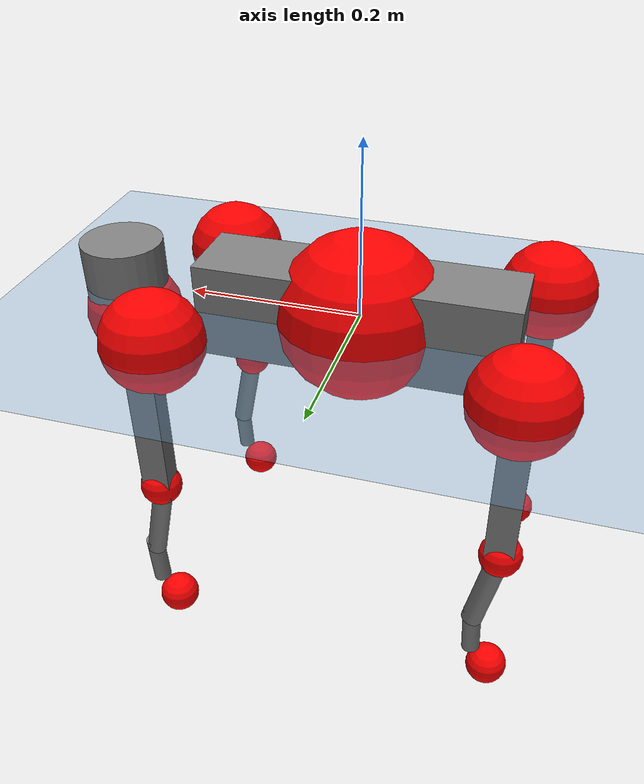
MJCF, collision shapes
<mujoco model="go2">
  <compiler angle="radian" assetdir="assets" balanceinertia="true" inertiafromgeom="false"/>

  <option timestep="0.005" density="1.2" viscosity="2e-05"/>

  <size nkey="1"/>

  <visual>
    <quality shadowsize="8192"/>
    <map shadowclip="0.5"/>
  </visual>

  <default>
    <default class="/">
      <geom contype="0" conaffinity="0" group="1" solref="-1000 -80"/>
      <site size="0.01 0.005 0.005" group="5"/>
      <general forcelimited="true" biastype="affine" gainprm="20" biasprm="0 -20 -0.5"/>
      <default class="go2">
        <joint armature="0.01" damping="0.01" frictionloss="0.2"/>
        <geom condim="1" margin="0.001"/>
        <default class="visual">
          <geom type="mesh" group="2"/>
        </default>
        <default class="collision">
          <geom group="3"/>
          <default class="foot">
            <geom size="0.022 0 0" condim="6" priority="1" friction="0.8 0.02 0.01" solimp="0.015 1 0.022"/>
          </default>
        </default>
        <default class="reward_collision_sphere">
          <geom group="5" rgba="1 0 0 1"/>
        </default>
      </default>
    </default>
  </default>

  <asset>
    <texture type="skybox" colorspace="auto" name="//unnamed_texture_0" builtin="gradient" rgb1="0.95 0.95 0.95" rgb2="0.95 0.95 0.95" width="100" height="600"/>
    <texture type="2d" colorspace="auto" name="texplane" builtin="checker" rgb1="0.345 0.575 0.748" rgb2="0.345 0.575 0.748" markrgb="1 1 1" width="512" height="512"/>
    <material name="MatPlane" class="/" texture="texplane" texuniform="true" texrepeat="2 2" specular="0.9"/>
    <material name="metal" class="/" rgba="0.9 0.95 0.95 1"/>
    <material name="black" class="/" rgba="0 0 0 1"/>
    <material name="white" class="/"/>
    <material name="gray" class="/" rgba="0.671705 0.692426 0.77427 1"/>
    <mesh name="base_0" class="/" file="base_0.obj"/>
    <mesh name="base_1" class="/" file="base_1.obj"/>
    <mesh name="base_2" class="/" file="base_2.obj"/>
    <mesh name="base_3" class="/" file="base_3.obj"/>
    <mesh name="base_4" class="/" file="base_4.obj"/>
    <mesh name="hip_0" class="/" file="hip_0.obj"/>
    <mesh name="hip_1" class="/" file="hip_1.obj"/>
    <mesh name="thigh_0" class="/" file="thigh_0.obj"/>
    <mesh name="thigh_1" class="/" file="thigh_1.obj"/>
    <mesh name="thigh_mirror_0" class="/" file="thigh_mirror_0.obj"/>
    <mesh name="thigh_mirror_1" class="/" file="thigh_mirror_1.obj"/>
    <mesh name="calf_0" class="/" file="calf_0.obj"/>
    <mesh name="calf_1" class="/" file="calf_1.obj"/>
    <mesh name="calf_mirror_0" class="/" file="calf_mirror_0.obj"/>
    <mesh name="calf_mirror_1" class="/" file="calf_mirror_1.obj"/>
    <mesh name="foot" class="/" file="foot.obj"/>
  </asset>

  <worldbody>
    <geom name="floor" class="/" size="100 100 0.125" type="plane" group="0" material="MatPlane"/>
    <light name="toplight_shadow" class="/" pos="0 0 5" dir="0.0990148 0.0990148 -0.990148" type="directional" ambient="0.04 0.04 0.04" diffuse="0.55 0.55 0.55" specular="0.12 0.12 0.12"/>
    <light name="toplight_fill" class="/" pos="0 0 5" dir="0.0990148 0.0990148 -0.990148" type="directional" castshadow="false" ambient="0.04 0.04 0.04" diffuse="0.3 0.3 0.3" specular="0.08 0.08 0.08"/>
    <body name="trunk" childclass="go2" pos="0.00028899 -0.00219496 0.000182616" quat="1 -3.56383e-05 5.91394e-06 -2.92305e-05">
      <inertial pos="0.0204071 -0.00253786 -0.00489047" quat="0.0113114 0.7166 -0.00348581 0.697384" mass="5.96368" diaginertia="0.108497 0.103238 0.0109801"/>
      <joint name="//unnamed_joint_0" type="free" armature="0" damping="0" frictionloss="0"/>
      <geom name="//unnamed_geom_1" class="visual" material="black" mesh="base_0"/>
      <geom name="//unnamed_geom_2" class="visual" material="black" mesh="base_1"/>
      <geom name="//unnamed_geom_3" class="visual" material="black" mesh="base_2"/>
      <geom name="//unnamed_geom_4" class="visual" material="white" mesh="base_3"/>
      <geom name="//unnamed_geom_5" class="visual" material="gray" mesh="base_4"/>
      <geom name="trunk_1" class="collision" size="0.179963 0.0447277 0.0545343" type="box"/>
      <geom name="trunk_2" class="collision" size="0.0478371 0.0430534" pos="0.286133 0 0.00852913" type="cylinder"/>
      <geom name="trunk_3" class="collision" size="0.0449669" pos="0.294165 0 -0.0511748"/>
      <geom name="//unnamed_geom_9" class="reward_collision_sphere" size="0.0956742"/>
      <geom name="//unnamed_geom_10" class="reward_collision_sphere" size="0.0574045" pos="0.281113 0 -0.0383811"/>
      <site name="imu" pos="-0.0153072 0.00443008 0.0251484" size="0.00956742"/>
      <camera name="track" pos="0 -2.02667 0" quat="0.707107 0.707107 0 0" mode="trackcom"/>
      <camera name="ego_camera" pos="0.313241 0 0.0383811" quat="-0.5 -0.5 0.5 0.5"/>
      <body name="FL_hip" pos="0.195189 0.0497229 0.00289494" quat="0.999999 0.000547799 0.000510614 -0.000769294">
        <inertial pos="-0.00474102 0.00203103 0.000659538" quat="0.49702 0.499368 0.505407 0.498163" mass="0.575264" diaginertia="0.000900466 0.000613062 0.000217472"/>
        <joint name="FL_hip_joint" pos="0 0 0" axis="1 0.000549796 1.81339e-06" stiffness="0.0152503" range="-0.997746 1.05918" armature="0.00921971" damping="0" frictionloss="0.206796"/>
        <geom name="//unnamed_geom_11" class="visual" material="metal" mesh="hip_0"/>
        <geom name="//unnamed_geom_12" class="visual" material="gray" mesh="hip_1"/>
        <geom name="//unnamed_geom_13" class="collision" size="0.0440101 0.0191348" pos="0 0.0810669 0" quat="0.707107 0.707107 0 0" type="cylinder"/>
        <geom name="//unnamed_geom_14" class="reward_collision_sphere" size="0.0574045" pos="0 0.0709335 0"/>
        <body name="FL_thigh" pos="0.000122373 0.0991737 0.00178614" quat="0.999999 0.000373474 -0.000820798 -0.000496956">
          <inertial pos="-0.00205541 -0.0213378 -0.0286049" quat="0.830508 0.0970621 -0.0201977 0.548113" mass="1.00882" diaginertia="0.00611675 0.00629938 0.000404085"/>
          <joint name="FL_thigh_joint" pos="0 0 0" axis="0.012788 0.999855 0.0112186" stiffness="0.00697943" range="-1.56151 3.54525" armature="0.0107043" damping="0.000759514" frictionloss="0.18581"/>
          <geom name="//unnamed_geom_15" class="visual" material="metal" mesh="thigh_0"/>
          <geom name="//unnamed_geom_16" class="visual" material="gray" mesh="thigh_1"/>
          <geom name="//unnamed_geom_17" class="collision" size="0.101893 0.0117201 0.0162646" pos="0 0 -0.0908353" quat="0.707107 0 0.707107 0" type="box"/>
          <body name="FL_calf" pos="0.000977724 -0.00319533 -0.181436" quat="1 0.000191642 6.0554e-05 0.000289948">
            <inertial pos="0.00789918 -0.000449514 -0.12285" quat="0.709959 0.00135778 -0.00371969 0.704231" mass="0.211283" diaginertia="0.00147377 0.00161021 2.30814e-05"/>
            <joint name="FL_calf_joint" pos="0 0 0" axis="-0.00224008 0.999976 -0.006629" range="-2.77612 -0.844064" armature="0.00894449" damping="0.00371811" frictionloss="0.189309"/>
            <geom name="//unnamed_geom_18" class="visual" material="gray" mesh="calf_0"/>
            <geom name="//unnamed_geom_19" class="visual" material="black" mesh="calf_1"/>
            <geom name="FL_calf0" class="collision" size="0.0114809 0.0574045" pos="0.00803181 0 -0.0511748" quat="0.994493 0 -0.104807 0" type="cylinder"/>
            <geom name="//unnamed_geom_21" class="collision" size="0.0105242 0.0310941" pos="0.0200795 0 -0.126231" quat="0.999688 0 0.0249974 0" type="cylinder"/>
            <geom name="//unnamed_geom_22" class="visual" pos="0 0 -0.181671" quat="1 0 0 0" material="black" mesh="foot"/>
            <geom name="FL_foot" class="foot" size="0.0164597" pos="-0.00200795 0 -0.181671"/>
            <geom name="//unnamed_geom_24" class="reward_collision_sphere" size="0.0239185"/>
            <geom name="//unnamed_geom_25" class="reward_collision_sphere" size="0.0239185" pos="-0.00200795 0 -0.181671"/>
            <site name="FL_foot" class="foot" pos="-0.00200795 0 -0.181671" size="0.00956742"/>
          </body>
        </body>
      </body>
      <body name="FR_hip" pos="0.19356 -0.0482833 -0.00205666" quat="1 0.000298709 -0.00021012 -6.21519e-06">
        <inertial pos="-0.00442199 -0.00258596 -0.00133606" quat="0.499604 0.504497 0.500411 0.495446" mass="0.576428" diaginertia="0.000915137 0.000618343 0.000223615"/>
        <joint name="FR_hip_joint" pos="0 0 0" axis="0.999977 -0.00483037 0.00471633" stiffness="0.00149156" range="-1.05033 1.03805" armature="0.00908103" damping="0.0137336" frictionloss="0.184902"/>
        <geom name="//unnamed_geom_26" class="visual" pos="0 1.39754e-09 5.99432e-08" quat="4.63268e-05 1 0 0" material="metal" mesh="hip_0"/>
        <geom name="//unnamed_geom_27" class="visual" pos="0 2.26557e-09 -1.48263e-07" quat="4.63268e-05 1 0 0" material="gray" mesh="hip_1"/>
        <geom name="//unnamed_geom_28" class="collision" size="0.0440101 0.0191348" pos="0 -0.0810669 0" quat="0.707107 0.707107 0 0" type="cylinder"/>
        <geom name="//unnamed_geom_29" class="reward_collision_sphere" size="0.0574045" pos="0 -0.0709335 0"/>
        <body name="FR_thigh" pos="0.00299405 -0.0944788 0.00293586" quat="1 1.91269e-05 0.000169307 2.69705e-05">
          <inertial pos="-0.00270991 0.019998 -0.0282651" quat="0.548714 -0.0209291 0.0893389 0.830959" mass="1.0636" diaginertia="0.00627869 0.00642284 0.000411122"/>
          <joint name="FR_thigh_joint" pos="0 0 0" axis="3.09448e-07 -1 1.685e-05" stiffness="0.00293723" range="-3.54412 1.56907" armature="0.00957101" damping="0.00975775" frictionloss="0.190613"/>
          <geom name="//unnamed_geom_30" class="visual" material="metal" mesh="thigh_mirror_0"/>
          <geom name="//unnamed_geom_31" class="visual" material="gray" mesh="thigh_mirror_1"/>
          <geom name="//unnamed_geom_32" class="collision" size="0.101893 0.0117201 0.0162646" pos="0 0 -0.0908353" quat="0.707107 0 0.707107 0" type="box"/>
          <body name="FR_calf" pos="-0.00286436 -0.000188269 -0.182741" quat="0.999999 -4.43047e-05 0.000552576 0.00115946">
            <inertial pos="0.00608733 0.000665677 -0.119354" quat="0.707613 -0.00524359 0.00333406 0.706573" mass="0.212251" diaginertia="0.00150211 0.00156677 2.37561e-05"/>
            <joint name="FR_calf_joint" pos="0 0 0" axis="0.0131944 -0.999913 -0.00040479" range="0.822655 2.73309" armature="0.0107928" damping="0.023305" frictionloss="0.167287"/>
            <geom name="//unnamed_geom_33" class="visual" material="gray" mesh="calf_mirror_0"/>
            <geom name="//unnamed_geom_34" class="visual" material="black" mesh="calf_mirror_1"/>
            <geom name="FR_calf0" class="collision" size="0.0124376 0.0574045" pos="0.0100398 0 -0.0511748" quat="0.995004 0 -0.0998334 0" type="cylinder"/>
            <geom name="//unnamed_geom_36" class="collision" size="0.0105242 0.0310941" pos="0.0200795 0 -0.126231" quat="0.999688 0 0.0249974 0" type="cylinder"/>
            <geom name="//unnamed_geom_37" class="visual" pos="0 0 -0.181671" quat="1 0 0 0" material="black" mesh="foot"/>
            <geom name="FR_foot" class="foot" size="0.0208179" pos="-0.00200795 0 -0.181671"/>
            <geom name="//unnamed_geom_39" class="reward_collision_sphere" size="0.0239185"/>
            <geom name="//unnamed_geom_40" class="reward_collision_sphere" size="0.0239185" pos="-0.00200795 0 -0.181671"/>
            <site name="FR_foot" class="foot" pos="-0.00200795 0 -0.181671" size="0.00956742"/>
          </body>
        </body>
      </body>
      <body name="RL_hip" pos="-0.193983 0.0482962 0.00108735" quat="1 1.01688e-05 -5.20263e-06 1.08501e-05">
        <inertial pos="0.00520301 -0.000108345 0.00102355" quat="0.506536 0.498823 0.49289 0.501653" mass="0.584962" diaginertia="0.000899469 0.000635435 0.000216976"/>
        <joint name="RL_hip_joint" pos="0 0 0" axis="-0.999924 -0.00680833 -0.0102409" stiffness="0.00282621" range="-1.06743 1.04692" armature="0.00974079" damping="0.0138287" frictionloss="0.182135"/>
        <geom name="//unnamed_geom_41" class="visual" pos="-1.316e-09 0 -2.57966e-07" quat="4.63268e-05 0 1 0" material="metal" mesh="hip_0"/>
        <geom name="//unnamed_geom_42" class="visual" pos="-2.13339e-09 0 -2.28779e-07" quat="4.63268e-05 0 1 0" material="gray" mesh="hip_1"/>
        <geom name="//unnamed_geom_43" class="collision" size="0.0440101 0.0191348" pos="0 0.0810669 0" quat="0.707107 0.707107 0 0" type="cylinder"/>
        <geom name="//unnamed_geom_44" class="reward_collision_sphere" size="0.0574045" pos="0 0.0709335 0"/>
        <body name="RL_thigh" pos="-0.00119453 0.0972167 -0.00181293" quat="1 0.000346344 0.000344124 -9.55323e-05">
          <inertial pos="-0.00365945 -0.0224986 -0.0307015" quat="0.829327 0.0863196 -0.0154221 0.551841" mass="1.03452" diaginertia="0.00610633 0.006181 0.000393036"/>
          <joint name="RL_thigh_joint" pos="0 0 0" axis="0.000240299 0.99999 0.00453093" stiffness="0.001951" range="-0.565597 4.55988" armature="0.00976762" damping="0" frictionloss="0.189751"/>
          <geom name="//unnamed_geom_45" class="visual" material="metal" mesh="thigh_0"/>
          <geom name="//unnamed_geom_46" class="visual" material="gray" mesh="thigh_1"/>
          <geom name="//unnamed_geom_47" class="collision" size="0.101893 0.0117201 0.0162646" pos="0 0 -0.0908353" quat="0.707107 0 0.707107 0" type="box"/>
          <body name="RL_calf" pos="-0.00125199 -0.00316613 -0.182463" quat="1 -0.000318671 0.00045976 -0.000206316">
            <inertial pos="0.00602381 -0.000918813 -0.120028" quat="0.712291 0.00270983 -0.00536276 0.701858" mass="0.217605" diaginertia="0.00159124 0.00157529 2.43925e-05"/>
            <joint name="RL_calf_joint" pos="0 0 0" axis="-0.00951682 0.999954 -0.000793304" range="-2.66782 -0.878918" armature="0.00982214" damping="0.00435102" frictionloss="0.191546"/>
            <geom name="//unnamed_geom_48" class="visual" material="gray" mesh="calf_0"/>
            <geom name="//unnamed_geom_49" class="visual" material="black" mesh="calf_1"/>
            <geom name="RL_calf0" class="collision" size="0.0124376 0.0574045" pos="0.0100398 0 -0.0511748" quat="0.995004 0 -0.0998334 0" type="cylinder"/>
            <geom name="//unnamed_geom_51" class="collision" size="0.0105242 0.0310941" pos="0.0200795 0 -0.126231" quat="0.999688 0 0.0249974 0" type="cylinder"/>
            <geom name="//unnamed_geom_52" class="visual" pos="0 0 -0.181671" quat="1 0 0 0" material="black" mesh="foot"/>
            <geom name="RL_foot" class="foot" size="0.0180654" pos="-0.00200795 0 -0.181671"/>
            <geom name="//unnamed_geom_54" class="reward_collision_sphere" size="0.0239185"/>
            <geom name="//unnamed_geom_55" class="reward_collision_sphere" size="0.0239185" pos="-0.00200795 0 -0.181671"/>
            <site name="RL_foot" class="foot" pos="-0.00200795 0 -0.181671" size="0.00956742"/>
          </body>
        </body>
      </body>
      <body name="RR_hip" pos="-0.195041 -0.04789 -0.00281202" quat="0.999999 -4.44567e-05 -0.000618523 0.00098421">
        <inertial pos="0.00436741 0.000626153 -0.00154158" quat="0.494599 0.498564 0.499811 0.506946" mass="0.604804" diaginertia="0.000935986 0.000639807 0.000226521"/>
        <joint name="RR_hip_joint" pos="0 0 0" axis="-0.999931 -0.0094728 -0.00689274" range="-1.04079 0.99422" armature="0.0096201" damping="0.00402888" frictionloss="0.191065"/>
        <geom name="//unnamed_geom_56" class="visual" pos="1.31632e-09 1.39754e-09 -3.17909e-07" quat="2.14617e-09 4.63268e-05 4.63268e-05 -1" material="metal" mesh="hip_0"/>
        <geom name="//unnamed_geom_57" class="visual" pos="2.13259e-09 2.26557e-09 -8.05162e-08" quat="2.14617e-09 4.63268e-05 4.63268e-05 -1" material="gray" mesh="hip_1"/>
        <geom name="//unnamed_geom_58" class="collision" size="0.0440101 0.0191348" pos="0 -0.0810669 0" quat="0.707107 0.707107 0 0" type="cylinder"/>
        <geom name="//unnamed_geom_59" class="reward_collision_sphere" size="0.0574045" pos="0 -0.0709335 0"/>
        <body name="RR_thigh" pos="0.000145741 -0.094866 0.000681988" quat="0.999999 0.000122127 -0.000846469 0.00102441">
          <inertial pos="-0.00355721 0.0200002 -0.0267576" quat="0.547496 -0.0213689 0.084056 0.832301" mass="1.00195" diaginertia="0.00600403 0.00619176 0.000391013"/>
          <joint name="RR_thigh_joint" pos="0 0 0" axis="0.00758547 -0.999966 -0.00315298" range="-4.549 0.542877" armature="0.00927627" damping="0.0202177" frictionloss="0.183141"/>
          <geom name="//unnamed_geom_60" class="visual" material="metal" mesh="thigh_mirror_0"/>
          <geom name="//unnamed_geom_61" class="visual" material="gray" mesh="thigh_mirror_1"/>
          <geom name="//unnamed_geom_62" class="collision" size="0.101893 0.0117201 0.0162646" pos="0 0 -0.0908353" quat="0.707107 0 0.707107 0" type="box"/>
          <body name="RR_calf" pos="-0.00184078 -0.00092573 -0.182211" quat="1 5.48949e-06 -0.000101348 0.000109134">
            <inertial pos="0.00861822 0.000749372 -0.119674" quat="0.704327 -0.0049104 0.00363051 0.70985" mass="0.209855" diaginertia="0.001569 0.00158092 2.366e-05"/>
            <joint name="RR_calf_joint" pos="0 0 0" axis="-0.00406356 -0.999955 -0.00856208" range="0.790127 2.78023" armature="0.00829833" damping="0.00919002" frictionloss="0.18904"/>
            <geom name="//unnamed_geom_63" class="visual" material="gray" mesh="calf_mirror_0"/>
            <geom name="//unnamed_geom_64" class="visual" material="black" mesh="calf_mirror_1"/>
            <geom name="RR_calf0" class="collision" size="0.0124376 0.0574045" pos="0.0100398 0 -0.0511748" quat="0.995004 0 -0.0998334 0" type="cylinder"/>
            <geom name="//unnamed_geom_66" class="collision" size="0.0105242 0.0310941" pos="0.0200795 0 -0.126231" quat="0.999688 0 0.0249974 0" type="cylinder"/>
            <geom name="//unnamed_geom_67" class="visual" pos="0 0 -0.181671" quat="1 0 0 0" material="black" mesh="foot"/>
            <geom name="RR_foot" class="foot" size="0.0195818" pos="-0.00200795 0 -0.181671"/>
            <geom name="//unnamed_geom_69" class="reward_collision_sphere" size="0.0239185"/>
            <geom name="//unnamed_geom_70" class="reward_collision_sphere" size="0.0239185" pos="-0.00200795 0 -0.181671"/>
            <site name="RR_foot" class="foot" pos="-0.00200795 0 -0.181671" size="0.00956742"/>
          </body>
        </body>
      </body>
    </body>
  </worldbody>

  <contact>
    <pair class="/" geom1="floor" geom2="FL_foot" name="//unnamed_contact_0"/>
    <pair class="/" geom1="floor" geom2="FR_foot" name="//unnamed_contact_1"/>
    <pair class="/" geom1="floor" geom2="RL_foot" name="//unnamed_contact_2"/>
    <pair class="/" geom1="floor" geom2="RR_foot" name="//unnamed_contact_3"/>
  </contact>

  <actuator>
    <general name="FL_hip" class="/" joint="FL_hip_joint" forcerange="-24.8641 24.8641" gainprm="20.5149" biasprm="0 -20.5149 -0.46932"/>
    <general name="FL_thigh" class="/" joint="FL_thigh_joint" forcerange="-21.4946 21.4946" gainprm="20.5149" biasprm="0 -20.5149 -0.46932"/>
    <general name="FL_calf" class="/" joint="FL_calf_joint" forcerange="-44.8879 44.8879" gainprm="20.5149" biasprm="0 -20.5149 -0.46932"/>
    <general name="FR_hip" class="/" joint="FR_hip_joint" forcerange="-24.9131 24.9131" gainprm="20.5149" biasprm="0 -20.5149 -0.46932"/>
    <general name="FR_thigh" class="/" joint="FR_thigh_joint" forcerange="-24.9148 24.9148" gainprm="20.5149" biasprm="0 -20.5149 -0.46932"/>
    <general name="FR_calf" class="/" joint="FR_calf_joint" forcerange="-45.9277 45.9277" gainprm="20.5149" biasprm="0 -20.5149 -0.46932"/>
    <general name="RL_hip" class="/" joint="RL_hip_joint" forcerange="-23.5498 23.5498" gainprm="20.5149" biasprm="0 -20.5149 -0.46932"/>
    <general name="RL_thigh" class="/" joint="RL_thigh_joint" forcerange="-22.202 22.202" gainprm="20.5149" biasprm="0 -20.5149 -0.46932"/>
    <general name="RL_calf" class="/" joint="RL_calf_joint" forcerange="-42.0105 42.0105" gainprm="20.5149" biasprm="0 -20.5149 -0.46932"/>
    <general name="RR_hip" class="/" joint="RR_hip_joint" forcerange="-20.4219 20.4219" gainprm="20.5149" biasprm="0 -20.5149 -0.46932"/>
    <general name="RR_thigh" class="/" joint="RR_thigh_joint" forcerange="-23.0037 23.0037" gainprm="20.5149" biasprm="0 -20.5149 -0.46932"/>
    <general name="RR_calf" class="/" joint="RR_calf_joint" forcerange="-42.8442 42.8442" gainprm="20.5149" biasprm="0 -20.5149 -0.46932"/>
  </actuator>

  <sensor>
    <gyro site="imu" name="imu_angular_velocity"/>
    <velocimeter site="imu" name="imu_linear_velocity"/>
    <framelinvel objtype="site" objname="FL_foot" name="FL_foot_global_linear_velocity"/>
    <framelinvel objtype="site" objname="FR_foot" name="FR_foot_global_linear_velocity"/>
    <framelinvel objtype="site" objname="RL_foot" name="RL_foot_global_linear_velocity"/>
    <framelinvel objtype="site" objname="RR_foot" name="RR_foot_global_linear_velocity"/>
  </sensor>

  <keyframe>
    <key name="home" qpos="0 0 0.325 1 0 0 0 0.1 0.8 -1.5 -0.1 -0.8 1.5 -0.1 0.8 -1.5 0.1 -0.8 1.5"/>
  </keyframe>
</mujoco>
